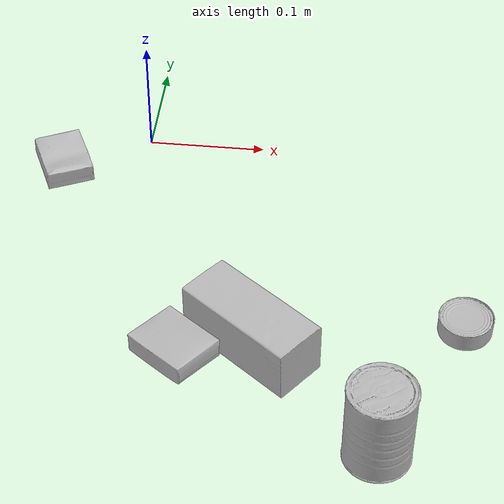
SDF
<sdf version="1.4">
  <world name="default">
    <light name="light1" type="point">
      <pose>0 0 1 0 0 0</pose>
      <diffuse>3 3 3 1</diffuse>
      <specular>3 3 3 1</specular>
    </light>
    <light name="light2" type="point">
      <pose>0 0.5 2 0 0 0</pose>
      <diffuse>1 1 1 1</diffuse>
      <specular>1 1 1 1</specular>
    </light>
    <light name="light3" type="point">
      <pose>0 0.5 2 0 0 0</pose>
      <diffuse>3 3 3 1</diffuse>
      <specular>3 3 3 1</specular>
    </light>
    <scene>
      <ambient>0.7 0.7 0.7</ambient>
    </scene>
    <model name="box1">
      <link name="link_box1">
        <collision name="default">
          <geometry>
            <mesh>
              <uri>model://pudding_box/collision_meshes/collision.obj</uri>
              <scale>0.5 0.5 0.5</scale>
            </mesh>
          </geometry>
          <surface>
            <friction>
              <ode>
                <mu>0.5</mu>
                <mu2>0.5</mu2>
              </ode>
            </friction>
          <contact>
        <ode>
            <max_vel>0</max_vel>
            <min_depth>0.0001</min_depth>
            <kp>1e8</kp>
        </ode>
    </contact></surface>
        </collision>
        <visual name="default">
          <geometry>
            <mesh>
              <uri>model://pudding_box/visual_meshes/visual.dae</uri>
              <scale>0.5 0.5 0.5</scale>
            </mesh>
          </geometry>
        </visual>
        <inertial>
          <mass>0.03999795392155647</mass>
          <pose>0.00024474109522998333 0.0004033942532259971 -0.0002594413817860186 0.005213101299265121 -0.006603799659933957 0.020079830747700592</pose>
          <inertia>
            <ixx>1.1303907e-05</ixx>
            <iyy>7.605349e-06</iyy>
            <izz>1.6693173e-05</izz>
            <ixy>0</ixy>
            <ixz>0</ixz>
            <iyz>0</iyz>
          </inertia>
        </inertial>
      </link>
      <pose>0.05571509152650833 -0.2499595284461975 0.009862899780273438 0.022348868788409294 -0.011391436270851875 -2.2442859019506343</pose>
    </model>
    <model name="box2">
      <link name="link_box2">
        <collision name="default">
          <geometry>
            <mesh>
              <uri>model://cracker_box/collision_meshes/collision.obj</uri>
              <scale>0.25 0.25 0.25</scale>
            </mesh>
          </geometry>
          <surface>
            <friction>
              <ode>
                <mu>0.5</mu>
                <mu2>0.5</mu2>
              </ode>
            </friction>
          <contact>
        <ode>
            <max_vel>0</max_vel>
            <min_depth>0.0001</min_depth>
            <kp>1e8</kp>
        </ode>
    </contact></surface>
        </collision>
        <visual name="default">
          <geometry>
            <mesh>
              <uri>model://cracker_box/visual_meshes/visual.dae</uri>
              <scale>0.25 0.25 0.25</scale>
            </mesh>
          </geometry>
        </visual>
        <inertial>
          <mass>0.046595875173807144</mass>
          <pose>0.00023660322767682374 6.358561950037256e-05 -0.0004257383698131889 -0.00031620768958073674 -0.011106491463008503 0.002546795235494827</pose>
          <inertia>
            <ixx>7.407444e-06</ixx>
            <iyy>1.2231146e-05</iyy>
            <izz>1.7454966e-05</izz>
            <ixy>0</ixy>
            <ixz>0</ixz>
            <iyz>0</iyz>
          </inertia>
        </inertial>
      </link>
      <pose>-0.0703980028629303 -0.04071378335356712 0.009120449423789978 -0.011787914958549126 -0.007367141019111347 1.9954115740008962</pose>
    </model>
    <model name="box3">
      <link name="link_box3">
        <collision name="default">
          <geometry>
            <mesh>
              <uri>model://wood_block/collision_meshes/collision.obj</uri>
              <scale>0.5 0.5 0.5</scale>
            </mesh>
          </geometry>
          <surface>
            <friction>
              <ode>
                <mu>0.5</mu>
                <mu2>0.5</mu2>
              </ode>
            </friction>
          <contact>
        <ode>
            <max_vel>0</max_vel>
            <min_depth>0.0001</min_depth>
            <kp>1e8</kp>
        </ode>
    </contact></surface>
        </collision>
        <visual name="default">
          <geometry>
            <mesh>
              <uri>model://wood_block/visual_meshes/visual.dae</uri>
              <scale>0.5 0.5 0.5</scale>
            </mesh>
          </geometry>
        </visual>
        <inertial>
          <mass>0.28600308299064636</mass>
          <pose>-2.9066577553749084e-06 -0.000285404734313488 0.00013204291462898254 -0.052207212015849935 -0.005192697210617926 -0.006861377963206113</pose>
          <inertia>
            <ixx>9.567885e-05</ixx>
            <iyy>0.00030224954</iyy>
            <izz>0.00030111894</izz>
            <ixy>0</ixy>
            <ixz>0</ixz>
            <iyz>0</iyz>
          </inertia>
        </inertial>
      </link>
      <pose>0.11292172968387604 -0.23848728835582733 0.022629264742136 -0.00520833568990148 0.005718777873608739 2.4724405380732533</pose>
    </model>
    <model name="can1">
      <link name="link_can1">
        <collision name="default">
          <geometry>
            <mesh>
              <uri>model://master_chef_can/collision_meshes/collision.obj</uri>
              <scale>0.5 0.5 0.5</scale>
            </mesh>
          </geometry>
          <surface>
            <friction>
              <ode>
                <mu>0.5</mu>
                <mu2>0.5</mu2>
              </ode>
            </friction>
          <contact>
        <ode>
            <max_vel>0</max_vel>
            <min_depth>0.0001</min_depth>
            <kp>1e8</kp>
        </ode>
    </contact></surface>
        </collision>
        <visual name="default">
          <geometry>
            <mesh>
              <uri>model://master_chef_can/visual_meshes/visual.dae</uri>
              <scale>0.5 0.5 0.5</scale>
            </mesh>
          </geometry>
        </visual>
        <inertial>
          <mass>0.116209015250206</mass>
          <pose>-4.661964703700505e-05 1.3926850783718692e-07 -5.0799026212189347e-05 -0.001799512795725948 0.0006479254888938259 -0.6102617322721998</pose>
          <inertia>
            <ixx>6.820682e-05</ixx>
            <iyy>6.7704816e-05</iyy>
            <izz>3.768948e-05</izz>
            <ixy>0</ixy>
            <ixz>0</ixz>
            <iyz>0</iyz>
          </inertia>
        </inertial>
      </link>
      <pose>0.2118741273880005 -0.3317715525627136 0.03530200198292732 -1.378232901146261e-06 -1.1720373507690402e-06 -2.023983454343891</pose>
    </model>
    <model name="can2">
      <link name="link_can2">
        <collision name="default">
          <geometry>
            <mesh>
              <uri>model://tuna_fish_can/collision_meshes/collision.obj</uri>
              <scale>0.5 0.5 0.5</scale>
            </mesh>
          </geometry>
          <surface>
            <friction>
              <ode>
                <mu>0.5</mu>
                <mu2>0.5</mu2>
              </ode>
            </friction>
          <contact>
        <ode>
            <max_vel>0</max_vel>
            <min_depth>0.0001</min_depth>
            <kp>1e8</kp>
        </ode>
    </contact></surface>
        </collision>
        <visual name="default">
          <geometry>
            <mesh>
              <uri>model://tuna_fish_can/visual_meshes/visual.dae</uri>
              <scale>0.5 0.5 0.5</scale>
            </mesh>
          </geometry>
        </visual>
        <inertial>
          <mass>0.017585277557373047</mass>
          <pose>-2.03625786525663e-05 -7.2565176196803804e-06 -0.000526902440469712 -0.0017944765250671837 0.00017163661440384507 0.24054644931605637</pose>
          <inertia>
            <ixx>2.3775558e-06</ixx>
            <iyy>2.3676464e-06</iyy>
            <izz>4.0683376e-06</izz>
            <ixy>0</ixy>
            <ixz>0</ixz>
            <iyz>0</iyz>
          </inertia>
        </inertial>
      </link>
      <pose>0.2751302719116211 -0.2047501653432846 0.008520001545548439 -1.710492306864331e-08 8.20530262174198e-08 1.3130583061588001</pose>
    </model>
  <physics type="ode">
      <max_contacts>50</max_contacts>
      <ode>
        <solver>
          <type>quick</type>
          <iters>75</iters>
        </solver>
        <constraints>
          <contact_max_correcting_vel>0</contact_max_correcting_vel>
          <contact_surface_layer>0</contact_surface_layer>
        </constraints>
      </ode>
    </physics></world>
</sdf>
